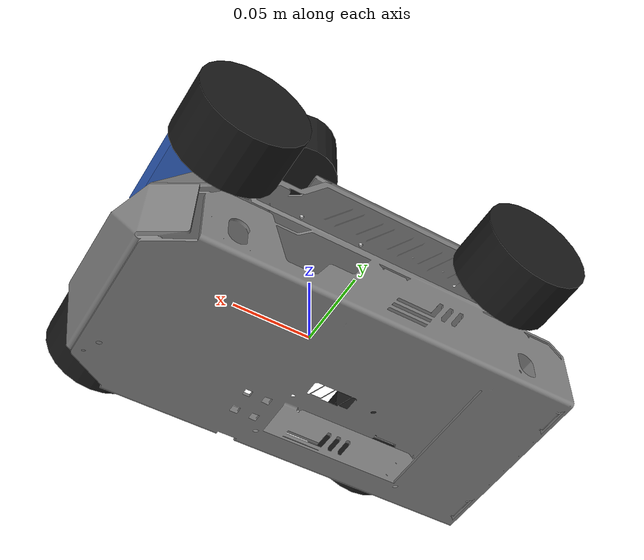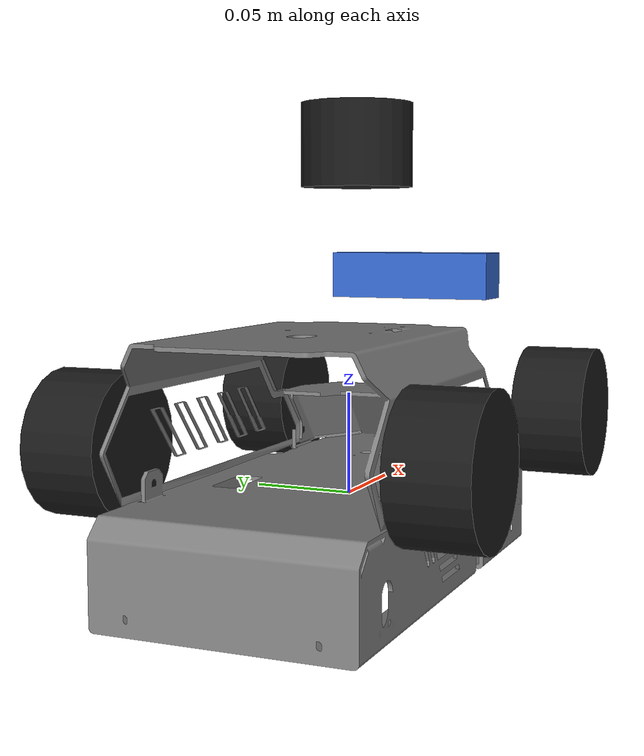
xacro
<?xml version="1.0"?>
<robot xmlns:xacro="http://www.ros.org/wiki/xacro" name="wes_car">

  <!-- ========== 尺寸參數（單位：m / kg，取自官方 SolidWorks 匯出量測值） ========== -->
  <xacro:property name="wheel_radius"   value="0.034"/>  <!-- 官方：base_link 0.0215 + 輪心 0.0125 = 觸地半徑 -->
  <xacro:property name="wheel_width"    value="0.037"/>  <!-- 僅視覺圓柱長，官方未給單一數值 -->
  <xacro:property name="wheel_mass"     value="0.102"/>  <!-- 官方單輪質量 -->
  <xacro:property name="front_x"        value="0.093"/>   <!-- 前軸距車身中心（官方對稱值） -->
  <xacro:property name="rear_x"         value="-0.093"/>  <!-- 後軸距車身中心（官方對稱值） -->
  <xacro:property name="half_track"     value="0.08475"/> <!-- 半輪距（y 方向，官方值） -->
  <xacro:property name="base_mass"      value="1.116"/>   <!-- 官方 base_link 質量 -->
  <xacro:property name="base_z"         value="0.0215"/>  <!-- base_link 相對地面高度（官方 base_joint） -->
  <!-- 感測器安裝位置（取自官方 laser / cam1 joint 相對 base_link） -->
  <xacro:property name="lidar_offset_x"  value="0.010"/>
  <xacro:property name="lidar_offset_z"  value="0.151"/>
  <xacro:property name="camera_offset_x" value="0.096"/>
  <xacro:property name="camera_offset_z" value="0.084"/>

  <!-- ========== 材質 ========== -->
  <material name="grey"><color rgba="0.5 0.5 0.5 1"/></material>
  <material name="black"><color rgba="0.1 0.1 0.1 1"/></material>
  <material name="blue"><color rgba="0.2 0.4 0.8 1"/></material>

  <!-- ========== base_footprint：車體在地面的投影（Nav2 慣例的根 frame） ========== -->
  <link name="base_footprint"/>

  <joint name="base_joint" type="fixed">
    <parent link="base_footprint"/>
    <child link="base_link"/>
    <origin xyz="0 0 ${base_z}" rpy="0 0 0"/>
  </joint>

  <!-- ========== base_link：車身 ========== -->
  <link name="base_link">
    <visual>
      <!-- 輕量 mesh（874KB，取自 MuJoCo 模型）：63MB 的 rosmaster_m1.stl 會讓
           gz 算繪執行緒載入卡死（Sensors 系統 Waiting for init），故不使用。
           offset 與 MuJoCo geom pos 相同，把 mesh 幾何中心對回車體原點。 -->
      <origin xyz="-0.139423 -0.075781 -0.064947" rpy="0 0 0"/>
      <geometry>
        <mesh filename="package://simulation/meshes/rosmaster_m1_lite.stl" scale="0.001 0.001 0.001"/>
      </geometry>
      <material name="grey"/>
    </visual>
    <collision>
      <!-- 碰撞用簡化 box，比 6300 萬頂點的 mesh 高效得多；
           base_z 降到官方 0.0215 後，origin z 上移至 0.058 以保持車體離地隔、不卡地面 -->
      <origin xyz="0 0 0.058" rpy="0 0 0"/>
      <geometry>
        <box size="0.28 0.2 0.12"/>
      </geometry>
    </collision>
    <inertial>
      <mass value="${base_mass}"/>
      <inertia ixx="0.00183" ixy="0.0" ixz="0.0" iyy="0.00349" iyz="0.0" izz="0.00473"/>
    </inertial>
  </link>

  <!-- ========== 麥克納姆輪巨集 ========== -->
  <!-- reflect_y: 左輪 1 / 右輪 -1
       fdir      : 滾柱摩擦方向（表達在 base_link，±45°），麥輪全向運動的關鍵 -->
  <xacro:macro name="mecanum_wheel" params="prefix x reflect_y fdir">
    <link name="wheel_${prefix}_link">
      <visual>
        <origin xyz="0 0 0" rpy="${pi/2} 0 0"/>
        <geometry>
          <cylinder radius="${wheel_radius}" length="${wheel_width}"/>
        </geometry>
        <material name="black"/>
      </visual>
      <collision>
        <!-- 球體 collision：麥輪滾柱的非等向摩擦（fdir1）在球體接觸點最穩定，
             這是 gz-sim 讓 MecanumDrive 產生正確全向運動的關鍵（cylinder 會失敗） -->
        <origin xyz="0 0 0" rpy="0 0 0"/>
        <geometry>
          <sphere radius="${wheel_radius}"/>
        </geometry>
      </collision>
      <inertial>
        <mass value="${wheel_mass}"/>
        <inertia ixx="4.6e-05" ixy="0" ixz="0" iyy="7.5e-05" iyz="0" izz="4.6e-05"/>
      </inertial>
    </link>

    <joint name="wheel_${prefix}_joint" type="continuous">
      <parent link="base_link"/>
      <child link="wheel_${prefix}_link"/>
      <origin xyz="${x} ${reflect_y * half_track} ${wheel_radius - base_z}" rpy="0 0 0"/>
      <axis xyz="0 1 0"/>
    </joint>

    <gazebo reference="wheel_${prefix}_link">
      <material>Gazebo/Black</material>
      <mu1>1.0</mu1>
      <mu2>0.0</mu2>
      <fdir1>${fdir}</fdir1>
    </gazebo>
  </xacro:macro>

  <!-- X 型麥輪：LF/RB 一組對角、RF/LB 另一組對角 -->
  <xacro:mecanum_wheel prefix="lf" x="${front_x}" reflect_y="1"  fdir="0.7071 -0.7071 0"/>
  <xacro:mecanum_wheel prefix="rf" x="${front_x}" reflect_y="-1" fdir="0.7071 0.7071 0"/>
  <xacro:mecanum_wheel prefix="lb" x="${rear_x}"  reflect_y="1"  fdir="0.7071 0.7071 0"/>
  <xacro:mecanum_wheel prefix="rb" x="${rear_x}"  reflect_y="-1" fdir="0.7071 -0.7071 0"/>

  <!-- ========== 光達（SLAMTEC RPLIDAR C1）==========
       官方規格：直徑 55.6mm、高 41.3mm、110g；360°、0.05~12m、0.72°、5KHz、掃描 10Hz -->
  <link name="lidar_link">
    <visual>
      <geometry><cylinder radius="0.0278" length="0.0413"/></geometry>
      <material name="black"/>
    </visual>
    <collision>
      <geometry><cylinder radius="0.0278" length="0.0413"/></geometry>
    </collision>
    <inertial>
      <mass value="0.11"/>
      <inertia ixx="0.0001" ixy="0" ixz="0" iyy="0.0001" iyz="0" izz="0.0001"/>
    </inertial>
  </link>

  <joint name="lidar_joint" type="fixed">
    <parent link="base_link"/>
    <child link="lidar_link"/>
    <origin xyz="${lidar_offset_x} 0 ${lidar_offset_z}" rpy="0 0 0"/>
  </joint>

  <!-- ========== Nuwa-HP60C 深度相機 ========== -->
  <link name="camera_link">
    <visual>
      <geometry><box size="0.025 0.09 0.025"/></geometry>
      <material name="blue"/>
    </visual>
    <collision>
      <geometry><box size="0.025 0.09 0.025"/></geometry>
    </collision>
    <inertial>
      <mass value="0.1"/>
      <inertia ixx="0.0001" ixy="0" ixz="0" iyy="0.0001" iyz="0" izz="0.0001"/>
    </inertial>
  </link>

  <joint name="camera_joint" type="fixed">
    <parent link="base_link"/>
    <child link="camera_link"/>
    <origin xyz="${camera_offset_x} 0 ${camera_offset_z}" rpy="0 0 0"/>
  </joint>

  <!-- 光學 frame：ROS 相機慣例 z 向前、x 向右、y 向下 -->
  <link name="camera_optical_link"/>
  <joint name="camera_optical_joint" type="fixed">
    <parent link="camera_link"/>
    <child link="camera_optical_link"/>
    <origin xyz="0 0 0" rpy="${-pi/2} 0 ${-pi/2}"/>
  </joint>

  <!-- ============ Gazebo Sim (gz-sim) 設定 =============== -->
  <!--  所有 gz topic 會由 launch 裡的 ros_gz_bridge 橋接成 ROS2 topic  -->

  <!-- 底盤驅動：MecanumDrive（麥輪專用系統外掛）
       訂閱 gz topic cmd_vel（Twist，含 linear.y 橫移）
       發布里程計 odom 與 odom→base_footprint 的 TF -->
  <gazebo>
    <plugin filename="ignition-gazebo-mecanum-drive-system"
            name="ignition::gazebo::systems::MecanumDrive">
      <front_left_joint>wheel_lf_joint</front_left_joint>
      <front_right_joint>wheel_rf_joint</front_right_joint>
      <back_left_joint>wheel_lb_joint</back_left_joint>
      <back_right_joint>wheel_rb_joint</back_right_joint>
      <wheel_separation>${2 * half_track}</wheel_separation>
      <wheelbase>${front_x - rear_x}</wheelbase>
      <wheel_radius>${wheel_radius}</wheel_radius>
      <min_acceleration>-3</min_acceleration>
      <max_acceleration>3</max_acceleration>
      <topic>cmd_vel</topic>
      <!-- odom/TF 交給下方 OdometryPublisher 專用系統發布，這裡不設定以免重複 -->
    </plugin>
  </gazebo>

  <!-- 里程計：OdometryPublisher 專職發布 odom 與 odom→base_footprint TF
       （Fortress 的 MecanumDrive 自帶 odom 發布不可靠，改用此專用系統） -->
  <gazebo>
    <plugin filename="ignition-gazebo-odometry-publisher-system"
            name="ignition::gazebo::systems::OdometryPublisher">
      <odom_frame>odom</odom_frame>
      <robot_base_frame>base_footprint</robot_base_frame>
      <odom_topic>odom</odom_topic>
      <tf_topic>tf</tf_topic>
      <odom_publish_frequency>50</odom_publish_frequency>
    </plugin>
  </gazebo>

  <gazebo>
    <plugin filename="ignition-gazebo-joint-state-publisher-system"
            name="ignition::gazebo::systems::JointStatePublisher">
      <joint_name>wheel_lf_joint</joint_name>
      <joint_name>wheel_rf_joint</joint_name>
      <joint_name>wheel_lb_joint</joint_name>
      <joint_name>wheel_rb_joint</joint_name>
    </plugin>
  </gazebo>

  <!-- 光達感測器：gpu_lidar → gz topic /scan
       參數依 SLAMTEC RPLIDAR C1 官方規格：
         360°全周 • 角度分辨率 0.72° → 500 點/圈
         測距 0.05~12m(70%反射) • 測距分辨力 15mm • 測距精度 ±30mm
         掃描頻率 10Hz(典型) -->
  <gazebo reference="lidar_link">
    <sensor name="lidar" type="gpu_lidar">
      <topic>scan</topic>
      <!-- 讓橋接後的 ROS 訊息 frame_id 對上 TF 樹的 lidar_link（否則會是 gz 內部名稱） -->
      <ignition_frame_id>lidar_link</ignition_frame_id>
      <update_rate>10</update_rate>
      <always_on>true</always_on>
      <visualize>true</visualize>
      <lidar>
        <scan>
          <horizontal>
            <samples>500</samples>
            <resolution>1</resolution>
            <min_angle>${-pi}</min_angle>
            <max_angle>${pi}</max_angle>
          </horizontal>
          <vertical>
            <samples>1</samples>
            <min_angle>0</min_angle>
            <max_angle>0</max_angle>
          </vertical>
        </scan>
        <range>
          <min>0.05</min>
          <max>12.0</max>
          <resolution>0.015</resolution>
        </range>
        <noise>
          <type>gaussian</type>
          <mean>0.0</mean>
          <stddev>0.01</stddev>
        </noise>
      </lidar>
    </sensor>
  </gazebo>

  <!-- Nuwa-HP60C 深度相機：rgbd_camera（一次產生 RGB + 深度 + 點雲）
       gz topics: /camera/image, /camera/depth_image, /camera/points, /camera/camera_info
       ⚠ FOV / 解析度 / 量測範圍為佔位值，請依 HP60C 規格書修正 -->
  <gazebo reference="camera_link">
    <sensor name="hp60c" type="rgbd_camera">
      <topic>camera</topic>
      <!-- ROS 相機慣例：影像/點雲的 frame 用光學座標（z 前、x 右、y 下） -->
      <ignition_frame_id>camera_optical_link</ignition_frame_id>
      <update_rate>15</update_rate>
      <always_on>true</always_on>
      <visualize>true</visualize>
      <camera>
        <horizontal_fov>1.25</horizontal_fov>
        <image>
          <width>640</width>
          <height>480</height>
        </image>
        <clip>
          <near>0.2</near>
          <far>8.0</far>
        </clip>
      </camera>
    </sensor>
  </gazebo>

  <gazebo reference="base_link">
    <material>Gazebo/Grey</material>
  </gazebo>

</robot>
